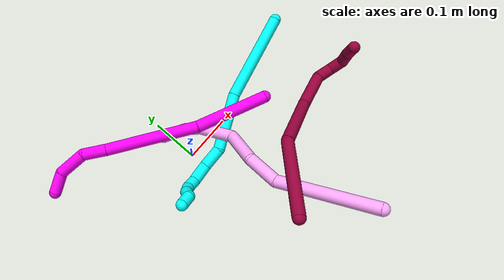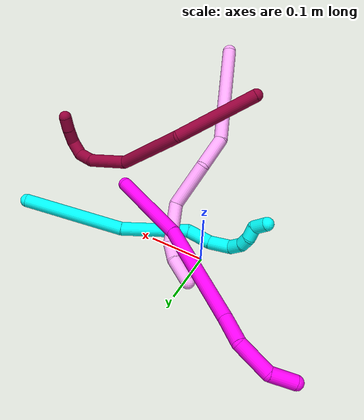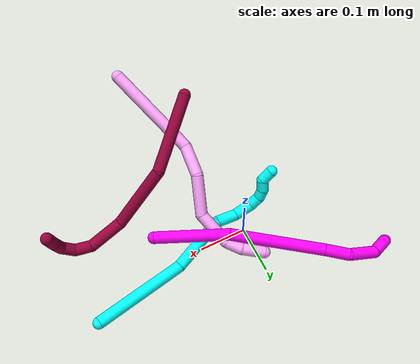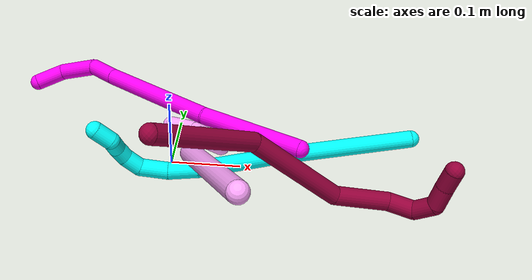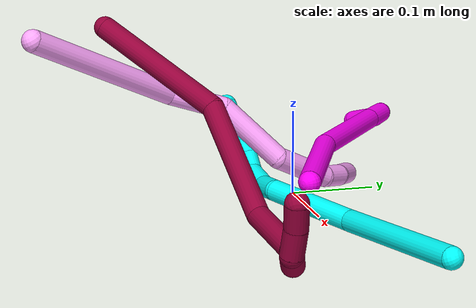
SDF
<sdf version="1.7">
 <world name="default">
  <model name="3">
   <static>0</static>
   <link name="3">
    <collision name="collision-cylinder-e_1_1_4">
     <pose>-0.061214 -0.020334 -0.071885 2.86593 -0.686456 -2.40112</pose>
     <geometry><cylinder><radius>0.0125</radius><length>0.193164</length></cylinder></geometry>
     <surface>
      <friction><ode><mu>1.16</mu><mu2>1.16</mu2><slip1>0</slip1><slip2>0</slip2></ode></friction>
      <contact><ode><kp>1e+06</kp><kd>1</kd><max_vel>0</max_vel><min_depth>0.001</min_depth></ode></contact>
     </surface>
    </collision>
    <visual name="visual-cylinder-e_1_1_4">
     <pose>-0.061214 -0.020334 -0.071885 2.86593 -0.686456 -2.40112</pose>
     <geometry><cylinder><radius>0.0125</radius><length>0.193164</length></cylinder></geometry>
     <material><ambient>0.003922 1 0.996078 1</ambient></material>
    </visual>
    <collision name="collision-cylinder-e_2_4_5">
     <pose>-0.150584 -0.064458 -0.194059 2.6997 -0.468538 -1.63139</pose>
     <geometry><cylinder><radius>0.0125</radius><length>0.124703</length></cylinder></geometry>
     <surface>
      <friction><ode><mu>1.16</mu><mu2>1.16</mu2><slip1>0</slip1><slip2>0</slip2></ode></friction>
      <contact><ode><kp>1e+06</kp><kd>1</kd><max_vel>0</max_vel><min_depth>0.001</min_depth></ode></contact>
     </surface>
    </collision>
    <visual name="visual-cylinder-e_2_4_5">
     <pose>-0.150584 -0.064458 -0.194059 2.6997 -0.468538 -1.63139</pose>
     <geometry><cylinder><radius>0.0125</radius><length>0.124703</length></cylinder></geometry>
     <material><ambient>0.003922 1 0.996078 1</ambient></material>
    </visual>
    <collision name="collision-cylinder-e_3_5_6">
     <pose>-0.195818 -0.090041 -0.258383 3.01459 -0.878865 -2.8727</pose>
     <geometry><cylinder><radius>0.0125</radius><length>0.044355</length></cylinder></geometry>
     <surface>
      <friction><ode><mu>1.16</mu><mu2>1.16</mu2><slip1>0</slip1><slip2>0</slip2></ode></friction>
      <contact><ode><kp>1e+06</kp><kd>1</kd><max_vel>0</max_vel><min_depth>0.001</min_depth></ode></contact>
     </surface>
    </collision>
    <visual name="visual-cylinder-e_3_5_6">
     <pose>-0.195818 -0.090041 -0.258383 3.01459 -0.878865 -2.8727</pose>
     <geometry><cylinder><radius>0.0125</radius><length>0.044355</length></cylinder></geometry>
     <material><ambient>0.003922 1 0.996078 1</ambient></material>
    </visual>
    <collision name="collision-cylinder-e_4_6_7">
     <pose>-0.22759 -0.099641 -0.284094 2.55213 -0.807999 -1.90667</pose>
     <geometry><cylinder><radius>0.0125</radius><length>0.040653</length></cylinder></geometry>
     <surface>
      <friction><ode><mu>1.16</mu><mu2>1.16</mu2><slip1>0</slip1><slip2>0</slip2></ode></friction>
      <contact><ode><kp>1e+06</kp><kd>1</kd><max_vel>0</max_vel><min_depth>0.001</min_depth></ode></contact>
     </surface>
    </collision>
    <visual name="visual-cylinder-e_4_6_7">
     <pose>-0.22759 -0.099641 -0.284094 2.55213 -0.807999 -1.90667</pose>
     <geometry><cylinder><radius>0.0125</radius><length>0.040653</length></cylinder></geometry>
     <material><ambient>0.003922 1 0.996078 1</ambient></material>
    </visual>
    <collision name="collision-cylinder-e_5_7_8">
     <pose>-0.250174 -0.117488 -0.298567 1.84264 -0.647975 -0.832745</pose>
     <geometry><cylinder><radius>0.0125</radius><length>0.026145</length></cylinder></geometry>
     <surface>
      <friction><ode><mu>1.16</mu><mu2>1.16</mu2><slip1>0</slip1><slip2>0</slip2></ode></friction>
      <contact><ode><kp>1e+06</kp><kd>1</kd><max_vel>0</max_vel><min_depth>0.001</min_depth></ode></contact>
     </surface>
    </collision>
    <visual name="visual-cylinder-e_5_7_8">
     <pose>-0.250174 -0.117488 -0.298567 1.84264 -0.647975 -0.832745</pose>
     <geometry><cylinder><radius>0.0125</radius><length>0.026145</length></cylinder></geometry>
     <material><ambient>0.003922 1 0.996078 1</ambient></material>
    </visual>
    <collision name="collision-cylinder-e_6_8_9">
     <pose>-0.260683 -0.137394 -0.302229 1.65811 -0.258495 -0.281814</pose>
     <geometry><cylinder><radius>0.0125</radius><length>0.020486</length></cylinder></geometry>
     <surface>
      <friction><ode><mu>1.16</mu><mu2>1.16</mu2><slip1>0</slip1><slip2>0</slip2></ode></friction>
      <contact><ode><kp>1e+06</kp><kd>1</kd><max_vel>0</max_vel><min_depth>0.001</min_depth></ode></contact>
     </surface>
    </collision>
    <visual name="visual-cylinder-e_6_8_9">
     <pose>-0.260683 -0.137394 -0.302229 1.65811 -0.258495 -0.281814</pose>
     <geometry><cylinder><radius>0.0125</radius><length>0.020486</length></cylinder></geometry>
     <material><ambient>0.003922 1 0.996078 1</ambient></material>
    </visual>
    <collision name="collision-cylinder-e_7_9_10">
     <pose>-0.261729 -0.158614 -0.304304 1.67709 0.136831 0.152151</pose>
     <geometry><cylinder><radius>0.0125</radius><length>0.023054</length></cylinder></geometry>
     <surface>
      <friction><ode><mu>1.16</mu><mu2>1.16</mu2><slip1>0</slip1><slip2>0</slip2></ode></friction>
      <contact><ode><kp>1e+06</kp><kd>1</kd><max_vel>0</max_vel><min_depth>0.001</min_depth></ode></contact>
     </surface>
    </collision>
    <visual name="visual-cylinder-e_7_9_10">
     <pose>-0.261729 -0.158614 -0.304304 1.67709 0.136831 0.152151</pose>
     <geometry><cylinder><radius>0.0125</radius><length>0.023054</length></cylinder></geometry>
     <material><ambient>0.003922 1 0.996078 1</ambient></material>
    </visual>
    <collision name="collision-cylinder-e_8_10_2">
     <pose>-0.268169 -0.180618 -0.308772 1.86755 -0.623653 -0.821698</pose>
     <geometry><cylinder><radius>0.0125</radius><length>0.027439</length></cylinder></geometry>
     <surface>
      <friction><ode><mu>1.16</mu><mu2>1.16</mu2><slip1>0</slip1><slip2>0</slip2></ode></friction>
      <contact><ode><kp>1e+06</kp><kd>1</kd><max_vel>0</max_vel><min_depth>0.001</min_depth></ode></contact>
     </surface>
    </collision>
    <visual name="visual-cylinder-e_8_10_2">
     <pose>-0.268169 -0.180618 -0.308772 1.86755 -0.623653 -0.821698</pose>
     <geometry><cylinder><radius>0.0125</radius><length>0.027439</length></cylinder></geometry>
     <material><ambient>0.003922 1 0.996078 1</ambient></material>
    </visual>
    <collision name="collision-sphere-2">
     <pose>-0.276181 -0.191268 -0.312029 0 -0 0</pose>
     <geometry><sphere><radius>0.0125</radius></sphere></geometry>
     <surface>
      <friction><ode><mu>1.16</mu><mu2>1.16</mu2><slip1>0</slip1><slip2>0</slip2></ode></friction>
      <contact><ode><kp>1e+06</kp><kd>1</kd><max_vel>0</max_vel><min_depth>0.001</min_depth></ode></contact>
     </surface>
    </collision>
    <visual name="visual-sphere-2">
     <pose>-0.276181 -0.191268 -0.312029 0 -0 0</pose>
     <geometry><sphere><radius>0.0125</radius></sphere></geometry>
     <material><ambient>0.003922 1 0.996078 1</ambient></material>
    </visual>
    <collision name="collision-sphere-10">
     <pose>-0.260156 -0.169969 -0.305516 0 -0 0</pose>
     <geometry><sphere><radius>0.0125</radius></sphere></geometry>
     <surface>
      <friction><ode><mu>1.16</mu><mu2>1.16</mu2><slip1>0</slip1><slip2>0</slip2></ode></friction>
      <contact><ode><kp>1e+06</kp><kd>1</kd><max_vel>0</max_vel><min_depth>0.001</min_depth></ode></contact>
     </surface>
    </collision>
    <visual name="visual-sphere-10">
     <pose>-0.260156 -0.169969 -0.305516 0 -0 0</pose>
     <geometry><sphere><radius>0.0125</radius></sphere></geometry>
     <material><ambient>0.003922 1 0.996078 1</ambient></material>
    </visual>
    <collision name="collision-sphere-9">
     <pose>-0.263301 -0.147259 -0.303093 0 -0 0</pose>
     <geometry><sphere><radius>0.0125</radius></sphere></geometry>
     <surface>
      <friction><ode><mu>1.16</mu><mu2>1.16</mu2><slip1>0</slip1><slip2>0</slip2></ode></friction>
      <contact><ode><kp>1e+06</kp><kd>1</kd><max_vel>0</max_vel><min_depth>0.001</min_depth></ode></contact>
     </surface>
    </collision>
    <visual name="visual-sphere-9">
     <pose>-0.263301 -0.147259 -0.303093 0 -0 0</pose>
     <geometry><sphere><radius>0.0125</radius></sphere></geometry>
     <material><ambient>0.003922 1 0.996078 1</ambient></material>
    </visual>
    <collision name="collision-sphere-4">
     <pose>-0.122427 -0.040667 -0.143771 0 -0 0</pose>
     <geometry><sphere><radius>0.0125</radius></sphere></geometry>
     <surface>
      <friction><ode><mu>1.16</mu><mu2>1.16</mu2><slip1>0</slip1><slip2>0</slip2></ode></friction>
      <contact><ode><kp>1e+06</kp><kd>1</kd><max_vel>0</max_vel><min_depth>0.001</min_depth></ode></contact>
     </surface>
    </collision>
    <visual name="visual-sphere-4">
     <pose>-0.122427 -0.040667 -0.143771 0 -0 0</pose>
     <geometry><sphere><radius>0.0125</radius></sphere></geometry>
     <material><ambient>0.003922 1 0.996078 1</ambient></material>
    </visual>
    <collision name="collision-sphere-1">
     <geometry><sphere><radius>0.0125</radius></sphere></geometry>
     <surface>
      <friction><ode><mu>1.16</mu><mu2>1.16</mu2><slip1>0</slip1><slip2>0</slip2></ode></friction>
      <contact><ode><kp>1e+06</kp><kd>1</kd><max_vel>0</max_vel><min_depth>0.001</min_depth></ode></contact>
     </surface>
    </collision>
    <visual name="visual-sphere-1">
     <geometry><sphere><radius>0.0125</radius></sphere></geometry>
     <material><ambient>0.003922 1 0.996078 1</ambient></material>
    </visual>
    <collision name="collision-sphere-8">
     <pose>-0.258064 -0.127528 -0.301365 0 -0 0</pose>
     <geometry><sphere><radius>0.0125</radius></sphere></geometry>
     <surface>
      <friction><ode><mu>1.16</mu><mu2>1.16</mu2><slip1>0</slip1><slip2>0</slip2></ode></friction>
      <contact><ode><kp>1e+06</kp><kd>1</kd><max_vel>0</max_vel><min_depth>0.001</min_depth></ode></contact>
     </surface>
    </collision>
    <visual name="visual-sphere-8">
     <pose>-0.258064 -0.127528 -0.301365 0 -0 0</pose>
     <geometry><sphere><radius>0.0125</radius></sphere></geometry>
     <material><ambient>0.003922 1 0.996078 1</ambient></material>
    </visual>
    <collision name="collision-sphere-5">
     <pose>-0.178741 -0.088249 -0.244347 0 -0 0</pose>
     <geometry><sphere><radius>0.0125</radius></sphere></geometry>
     <surface>
      <friction><ode><mu>1.16</mu><mu2>1.16</mu2><slip1>0</slip1><slip2>0</slip2></ode></friction>
      <contact><ode><kp>1e+06</kp><kd>1</kd><max_vel>0</max_vel><min_depth>0.001</min_depth></ode></contact>
     </surface>
    </collision>
    <visual name="visual-sphere-5">
     <pose>-0.178741 -0.088249 -0.244347 0 -0 0</pose>
     <geometry><sphere><radius>0.0125</radius></sphere></geometry>
     <material><ambient>0.003922 1 0.996078 1</ambient></material>
    </visual>
    <collision name="collision-sphere-6">
     <pose>-0.212895 -0.091833 -0.272419 0 -0 0</pose>
     <geometry><sphere><radius>0.0125</radius></sphere></geometry>
     <surface>
      <friction><ode><mu>1.16</mu><mu2>1.16</mu2><slip1>0</slip1><slip2>0</slip2></ode></friction>
      <contact><ode><kp>1e+06</kp><kd>1</kd><max_vel>0</max_vel><min_depth>0.001</min_depth></ode></contact>
     </surface>
    </collision>
    <visual name="visual-sphere-6">
     <pose>-0.212895 -0.091833 -0.272419 0 -0 0</pose>
     <geometry><sphere><radius>0.0125</radius></sphere></geometry>
     <material><ambient>0.003922 1 0.996078 1</ambient></material>
    </visual>
    <collision name="collision-sphere-7">
     <pose>-0.242284 -0.107449 -0.295768 0 -0 0</pose>
     <geometry><sphere><radius>0.0125</radius></sphere></geometry>
     <surface>
      <friction><ode><mu>1.16</mu><mu2>1.16</mu2><slip1>0</slip1><slip2>0</slip2></ode></friction>
      <contact><ode><kp>1e+06</kp><kd>1</kd><max_vel>0</max_vel><min_depth>0.001</min_depth></ode></contact>
     </surface>
    </collision>
    <visual name="visual-sphere-7">
     <pose>-0.242284 -0.107449 -0.295768 0 -0 0</pose>
     <geometry><sphere><radius>0.0125</radius></sphere></geometry>
     <material><ambient>0.003922 1 0.996078 1</ambient></material>
    </visual>
    <inertial>
     <pose>-0.147628 -0.069019 -0.181162 0 -0 0</pose>
     <mass>0.5</mass>
     <inertia>
      <ixx>-0.000854</ixx>
      <ixy>0</ixy>
      <ixz>0</ixz>
      <iyy>6.8e-05</iyy>
      <iyz>0</iyz>
      <izz>0.000654</izz>
     </inertia>
    </inertial>
   </link>
   <pose>0.345825 0.05957 0.0259 -1.18038 0.022028 -0.660917</pose>
  </model>
  <model name="4">
   <static>0</static>
   <link name="4">
    <collision name="collision-cylinder-e_1_1_4">
     <pose>-0.012415 0.059416 -0.075116 -2.47238 -0.128911 0.367108</pose>
     <geometry><cylinder><radius>0.0125</radius><length>0.193151</length></cylinder></geometry>
     <surface>
      <friction><ode><mu>1.16</mu><mu2>1.16</mu2><slip1>0</slip1><slip2>0</slip2></ode></friction>
      <contact><ode><kp>1e+06</kp><kd>1</kd><max_vel>0</max_vel><min_depth>0.001</min_depth></ode></contact>
     </surface>
    </collision>
    <visual name="visual-cylinder-e_1_1_4">
     <pose>-0.012415 0.059416 -0.075116 -2.47238 -0.128911 0.367108</pose>
     <geometry><cylinder><radius>0.0125</radius><length>0.193151</length></cylinder></geometry>
     <material><ambient>1 0.65098 0.996078 1</ambient></material>
    </visual>
    <collision name="collision-cylinder-e_2_4_5">
     <pose>-0.014657 0.138642 -0.173354 -2.43315 0.322474 -0.828687</pose>
     <geometry><cylinder><radius>0.0125</radius><length>0.064205</length></cylinder></geometry>
     <surface>
      <friction><ode><mu>1.16</mu><mu2>1.16</mu2><slip1>0</slip1><slip2>0</slip2></ode></friction>
      <contact><ode><kp>1e+06</kp><kd>1</kd><max_vel>0</max_vel><min_depth>0.001</min_depth></ode></contact>
     </surface>
    </collision>
    <visual name="visual-cylinder-e_2_4_5">
     <pose>-0.014657 0.138642 -0.173354 -2.43315 0.322474 -0.828687</pose>
     <geometry><cylinder><radius>0.0125</radius><length>0.064205</length></cylinder></geometry>
     <material><ambient>1 0.65098 0.996078 1</ambient></material>
    </visual>
    <collision name="collision-cylinder-e_3_5_6">
     <pose>0.009983 0.165607 -0.235406 -2.95984 0.350383 -2.19073</pose>
     <geometry><cylinder><radius>0.0125</radius><length>0.084287</length></cylinder></geometry>
     <surface>
      <friction><ode><mu>1.16</mu><mu2>1.16</mu2><slip1>0</slip1><slip2>0</slip2></ode></friction>
      <contact><ode><kp>1e+06</kp><kd>1</kd><max_vel>0</max_vel><min_depth>0.001</min_depth></ode></contact>
     </surface>
    </collision>
    <visual name="visual-cylinder-e_3_5_6">
     <pose>0.009983 0.165607 -0.235406 -2.95984 0.350383 -2.19073</pose>
     <geometry><cylinder><radius>0.0125</radius><length>0.084287</length></cylinder></geometry>
     <material><ambient>1 0.65098 0.996078 1</ambient></material>
    </visual>
    <collision name="collision-cylinder-e_4_6_7">
     <pose>0.020425 0.195614 -0.304551 -2.49404 -0.10584 0.313101</pose>
     <geometry><cylinder><radius>0.0125</radius><length>0.076191</length></cylinder></geometry>
     <surface>
      <friction><ode><mu>1.16</mu><mu2>1.16</mu2><slip1>0</slip1><slip2>0</slip2></ode></friction>
      <contact><ode><kp>1e+06</kp><kd>1</kd><max_vel>0</max_vel><min_depth>0.001</min_depth></ode></contact>
     </surface>
    </collision>
    <visual name="visual-cylinder-e_4_6_7">
     <pose>0.020425 0.195614 -0.304551 -2.49404 -0.10584 0.313101</pose>
     <geometry><cylinder><radius>0.0125</radius><length>0.076191</length></cylinder></geometry>
     <material><ambient>1 0.65098 0.996078 1</ambient></material>
    </visual>
    <collision name="collision-cylinder-e_5_7_8">
     <pose>0.00958 0.231031 -0.343771 -2.19275 -0.41549 0.778977</pose>
     <geometry><cylinder><radius>0.0125</radius><length>0.033794</length></cylinder></geometry>
     <surface>
      <friction><ode><mu>1.16</mu><mu2>1.16</mu2><slip1>0</slip1><slip2>0</slip2></ode></friction>
      <contact><ode><kp>1e+06</kp><kd>1</kd><max_vel>0</max_vel><min_depth>0.001</min_depth></ode></contact>
     </surface>
    </collision>
    <visual name="visual-cylinder-e_5_7_8">
     <pose>0.00958 0.231031 -0.343771 -2.19275 -0.41549 0.778977</pose>
     <geometry><cylinder><radius>0.0125</radius><length>0.033794</length></cylinder></geometry>
     <material><ambient>1 0.65098 0.996078 1</ambient></material>
    </visual>
    <collision name="collision-cylinder-e_6_8_2">
     <pose>-0.013275 0.258207 -0.363471 -2.20251 -0.724793 1.28346</pose>
     <geometry><cylinder><radius>0.0125</radius><length>0.048372</length></cylinder></geometry>
     <surface>
      <friction><ode><mu>1.16</mu><mu2>1.16</mu2><slip1>0</slip1><slip2>0</slip2></ode></friction>
      <contact><ode><kp>1e+06</kp><kd>1</kd><max_vel>0</max_vel><min_depth>0.001</min_depth></ode></contact>
     </surface>
    </collision>
    <visual name="visual-cylinder-e_6_8_2">
     <pose>-0.013275 0.258207 -0.363471 -2.20251 -0.724793 1.28346</pose>
     <geometry><cylinder><radius>0.0125</radius><length>0.048372</length></cylinder></geometry>
     <material><ambient>1 0.65098 0.996078 1</ambient></material>
    </visual>
    <collision name="collision-sphere-2">
     <pose>-0.02931 0.27282 -0.374163 0 -0 0</pose>
     <geometry><sphere><radius>0.0125</radius></sphere></geometry>
     <surface>
      <friction><ode><mu>1.16</mu><mu2>1.16</mu2><slip1>0</slip1><slip2>0</slip2></ode></friction>
      <contact><ode><kp>1e+06</kp><kd>1</kd><max_vel>0</max_vel><min_depth>0.001</min_depth></ode></contact>
     </surface>
    </collision>
    <visual name="visual-sphere-2">
     <pose>-0.02931 0.27282 -0.374163 0 -0 0</pose>
     <geometry><sphere><radius>0.0125</radius></sphere></geometry>
     <material><ambient>1 0.65098 0.996078 1</ambient></material>
    </visual>
    <collision name="collision-sphere-4">
     <pose>-0.02483 0.118831 -0.150232 0 -0 0</pose>
     <geometry><sphere><radius>0.0125</radius></sphere></geometry>
     <surface>
      <friction><ode><mu>1.16</mu><mu2>1.16</mu2><slip1>0</slip1><slip2>0</slip2></ode></friction>
      <contact><ode><kp>1e+06</kp><kd>1</kd><max_vel>0</max_vel><min_depth>0.001</min_depth></ode></contact>
     </surface>
    </collision>
    <visual name="visual-sphere-4">
     <pose>-0.02483 0.118831 -0.150232 0 -0 0</pose>
     <geometry><sphere><radius>0.0125</radius></sphere></geometry>
     <material><ambient>1 0.65098 0.996078 1</ambient></material>
    </visual>
    <collision name="collision-sphere-1">
     <geometry><sphere><radius>0.0125</radius></sphere></geometry>
     <surface>
      <friction><ode><mu>1.16</mu><mu2>1.16</mu2><slip1>0</slip1><slip2>0</slip2></ode></friction>
      <contact><ode><kp>1e+06</kp><kd>1</kd><max_vel>0</max_vel><min_depth>0.001</min_depth></ode></contact>
     </surface>
    </collision>
    <visual name="visual-sphere-1">
     <geometry><sphere><radius>0.0125</radius></sphere></geometry>
     <material><ambient>1 0.65098 0.996078 1</ambient></material>
    </visual>
    <collision name="collision-sphere-8">
     <pose>0.00276 0.243595 -0.352778 0 -0 0</pose>
     <geometry><sphere><radius>0.0125</radius></sphere></geometry>
     <surface>
      <friction><ode><mu>1.16</mu><mu2>1.16</mu2><slip1>0</slip1><slip2>0</slip2></ode></friction>
      <contact><ode><kp>1e+06</kp><kd>1</kd><max_vel>0</max_vel><min_depth>0.001</min_depth></ode></contact>
     </surface>
    </collision>
    <visual name="visual-sphere-8">
     <pose>0.00276 0.243595 -0.352778 0 -0 0</pose>
     <geometry><sphere><radius>0.0125</radius></sphere></geometry>
     <material><ambient>1 0.65098 0.996078 1</ambient></material>
    </visual>
    <collision name="collision-sphere-5">
     <pose>-0.004483 0.158453 -0.196475 0 -0 0</pose>
     <geometry><sphere><radius>0.0125</radius></sphere></geometry>
     <surface>
      <friction><ode><mu>1.16</mu><mu2>1.16</mu2><slip1>0</slip1><slip2>0</slip2></ode></friction>
      <contact><ode><kp>1e+06</kp><kd>1</kd><max_vel>0</max_vel><min_depth>0.001</min_depth></ode></contact>
     </surface>
    </collision>
    <visual name="visual-sphere-5">
     <pose>-0.004483 0.158453 -0.196475 0 -0 0</pose>
     <geometry><sphere><radius>0.0125</radius></sphere></geometry>
     <material><ambient>1 0.65098 0.996078 1</ambient></material>
    </visual>
    <collision name="collision-sphere-6">
     <pose>0.024449 0.172762 -0.274337 0 -0 0</pose>
     <geometry><sphere><radius>0.0125</radius></sphere></geometry>
     <surface>
      <friction><ode><mu>1.16</mu><mu2>1.16</mu2><slip1>0</slip1><slip2>0</slip2></ode></friction>
      <contact><ode><kp>1e+06</kp><kd>1</kd><max_vel>0</max_vel><min_depth>0.001</min_depth></ode></contact>
     </surface>
    </collision>
    <visual name="visual-sphere-6">
     <pose>0.024449 0.172762 -0.274337 0 -0 0</pose>
     <geometry><sphere><radius>0.0125</radius></sphere></geometry>
     <material><ambient>1 0.65098 0.996078 1</ambient></material>
    </visual>
    <collision name="collision-sphere-7">
     <pose>0.0164 0.218466 -0.334764 0 -0 0</pose>
     <geometry><sphere><radius>0.0125</radius></sphere></geometry>
     <surface>
      <friction><ode><mu>1.16</mu><mu2>1.16</mu2><slip1>0</slip1><slip2>0</slip2></ode></friction>
      <contact><ode><kp>1e+06</kp><kd>1</kd><max_vel>0</max_vel><min_depth>0.001</min_depth></ode></contact>
     </surface>
    </collision>
    <visual name="visual-sphere-7">
     <pose>0.0164 0.218466 -0.334764 0 -0 0</pose>
     <geometry><sphere><radius>0.0125</radius></sphere></geometry>
     <material><ambient>1 0.65098 0.996078 1</ambient></material>
    </visual>
    <inertial>
     <pose>-0.00252 0.139076 -0.195768 0 -0 0</pose>
     <mass>0.5</mass>
     <inertia>
      <ixx>0.000772</ixx>
      <ixy>0</ixy>
      <ixz>0</ixz>
      <iyy>-0.000227</iyy>
      <iyz>0</iyz>
      <izz>-0.000396</izz>
     </inertia>
    </inertial>
   </link>
   <pose>0.121798 -0.322454 0.224168 0.48086 -0.152523 0.331799</pose>
  </model>
  <model name="8">
   <static>0</static>
   <link name="8">
    <collision name="collision-cylinder-e_1_1_4">
     <pose>0.006644 0.056198 -0.057125 -2.36437 0.082719 -0.201464</pose>
     <geometry><cylinder><radius>0.0125</radius><length>0.160818</length></cylinder></geometry>
     <surface>
      <friction><ode><mu>1.16</mu><mu2>1.16</mu2><slip1>0</slip1><slip2>0</slip2></ode></friction>
      <contact><ode><kp>1e+06</kp><kd>1</kd><max_vel>0</max_vel><min_depth>0.001</min_depth></ode></contact>
     </surface>
    </collision>
    <visual name="visual-cylinder-e_1_1_4">
     <pose>0.006644 0.056198 -0.057125 -2.36437 0.082719 -0.201464</pose>
     <geometry><cylinder><radius>0.0125</radius><length>0.160818</length></cylinder></geometry>
     <material><ambient>0.584314 0 0.227451 1</ambient></material>
    </visual>
    <collision name="collision-cylinder-e_2_4_5">
     <pose>0.011188 0.132443 -0.18205 -2.85412 -0.029688 0.20442</pose>
     <geometry><cylinder><radius>0.0125</radius><length>0.141467</length></cylinder></geometry>
     <surface>
      <friction><ode><mu>1.16</mu><mu2>1.16</mu2><slip1>0</slip1><slip2>0</slip2></ode></friction>
      <contact><ode><kp>1e+06</kp><kd>1</kd><max_vel>0</max_vel><min_depth>0.001</min_depth></ode></contact>
     </surface>
    </collision>
    <visual name="visual-cylinder-e_2_4_5">
     <pose>0.011188 0.132443 -0.18205 -2.85412 -0.029688 0.20442</pose>
     <geometry><cylinder><radius>0.0125</radius><length>0.141467</length></cylinder></geometry>
     <material><ambient>0.584314 0 0.227451 1</ambient></material>
    </visual>
    <collision name="collision-cylinder-e_3_5_6">
     <pose>0.02568 0.163552 -0.280934 -2.79965 0.465953 -1.88353</pose>
     <geometry><cylinder><radius>0.0125</radius><length>0.073859</length></cylinder></geometry>
     <surface>
      <friction><ode><mu>1.16</mu><mu2>1.16</mu2><slip1>0</slip1><slip2>0</slip2></ode></friction>
      <contact><ode><kp>1e+06</kp><kd>1</kd><max_vel>0</max_vel><min_depth>0.001</min_depth></ode></contact>
     </surface>
    </collision>
    <visual name="visual-cylinder-e_3_5_6">
     <pose>0.02568 0.163552 -0.280934 -2.79965 0.465953 -1.88353</pose>
     <geometry><cylinder><radius>0.0125</radius><length>0.073859</length></cylinder></geometry>
     <material><ambient>0.584314 0 0.227451 1</ambient></material>
    </visual>
    <collision name="collision-cylinder-e_4_6_7">
     <pose>0.051065 0.172091 -0.326844 2.97296 0.529074 2.53674</pose>
     <geometry><cylinder><radius>0.0125</radius><length>0.034845</length></cylinder></geometry>
     <surface>
      <friction><ode><mu>1.16</mu><mu2>1.16</mu2><slip1>0</slip1><slip2>0</slip2></ode></friction>
      <contact><ode><kp>1e+06</kp><kd>1</kd><max_vel>0</max_vel><min_depth>0.001</min_depth></ode></contact>
     </surface>
    </collision>
    <visual name="visual-cylinder-e_4_6_7">
     <pose>0.051065 0.172091 -0.326844 2.97296 0.529074 2.53674</pose>
     <geometry><cylinder><radius>0.0125</radius><length>0.034845</length></cylinder></geometry>
     <material><ambient>0.584314 0 0.227451 1</ambient></material>
    </visual>
    <collision name="collision-cylinder-e_5_7_8">
     <pose>0.073963 0.165541 -0.345534 2.33553 1.19409 2.02125</pose>
     <geometry><cylinder><radius>0.0125</radius><length>0.030335</length></cylinder></geometry>
     <surface>
      <friction><ode><mu>1.16</mu><mu2>1.16</mu2><slip1>0</slip1><slip2>0</slip2></ode></friction>
      <contact><ode><kp>1e+06</kp><kd>1</kd><max_vel>0</max_vel><min_depth>0.001</min_depth></ode></contact>
     </surface>
    </collision>
    <visual name="visual-cylinder-e_5_7_8">
     <pose>0.073963 0.165541 -0.345534 2.33553 1.19409 2.02125</pose>
     <geometry><cylinder><radius>0.0125</radius><length>0.030335</length></cylinder></geometry>
     <material><ambient>0.584314 0 0.227451 1</ambient></material>
    </visual>
    <collision name="collision-cylinder-e_6_8_9">
     <pose>0.102053 0.161216 -0.342873 0.04568 1.13397 0.029088</pose>
     <geometry><cylinder><radius>0.0125</radius><length>0.030872</length></cylinder></geometry>
     <surface>
      <friction><ode><mu>1.16</mu><mu2>1.16</mu2><slip1>0</slip1><slip2>0</slip2></ode></friction>
      <contact><ode><kp>1e+06</kp><kd>1</kd><max_vel>0</max_vel><min_depth>0.001</min_depth></ode></contact>
     </surface>
    </collision>
    <visual name="visual-cylinder-e_6_8_9">
     <pose>0.102053 0.161216 -0.342873 0.04568 1.13397 0.029088</pose>
     <geometry><cylinder><radius>0.0125</radius><length>0.030872</length></cylinder></geometry>
     <material><ambient>0.584314 0 0.227451 1</ambient></material>
    </visual>
    <collision name="collision-cylinder-e_7_9_2">
     <pose>0.128558 0.159158 -0.330566 0.29543 1.12087 0.18622</pose>
     <geometry><cylinder><radius>0.0125</radius><length>0.027803</length></cylinder></geometry>
     <surface>
      <friction><ode><mu>1.16</mu><mu2>1.16</mu2><slip1>0</slip1><slip2>0</slip2></ode></friction>
      <contact><ode><kp>1e+06</kp><kd>1</kd><max_vel>0</max_vel><min_depth>0.001</min_depth></ode></contact>
     </surface>
    </collision>
    <visual name="visual-cylinder-e_7_9_2">
     <pose>0.128558 0.159158 -0.330566 0.29543 1.12087 0.18622</pose>
     <geometry><cylinder><radius>0.0125</radius><length>0.027803</length></cylinder></geometry>
     <material><ambient>0.584314 0 0.227451 1</ambient></material>
    </visual>
    <collision name="collision-sphere-2">
     <pose>0.141076 0.157398 -0.324782 0 -0 0</pose>
     <geometry><sphere><radius>0.0125</radius></sphere></geometry>
     <surface>
      <friction><ode><mu>1.16</mu><mu2>1.16</mu2><slip1>0</slip1><slip2>0</slip2></ode></friction>
      <contact><ode><kp>1e+06</kp><kd>1</kd><max_vel>0</max_vel><min_depth>0.001</min_depth></ode></contact>
     </surface>
    </collision>
    <visual name="visual-sphere-2">
     <pose>0.141076 0.157398 -0.324782 0 -0 0</pose>
     <geometry><sphere><radius>0.0125</radius></sphere></geometry>
     <material><ambient>0.584314 0 0.227451 1</ambient></material>
    </visual>
    <collision name="collision-sphere-9">
     <pose>0.11604 0.160918 -0.33635 0 -0 0</pose>
     <geometry><sphere><radius>0.0125</radius></sphere></geometry>
     <surface>
      <friction><ode><mu>1.16</mu><mu2>1.16</mu2><slip1>0</slip1><slip2>0</slip2></ode></friction>
      <contact><ode><kp>1e+06</kp><kd>1</kd><max_vel>0</max_vel><min_depth>0.001</min_depth></ode></contact>
     </surface>
    </collision>
    <visual name="visual-sphere-9">
     <pose>0.11604 0.160918 -0.33635 0 -0 0</pose>
     <geometry><sphere><radius>0.0125</radius></sphere></geometry>
     <material><ambient>0.584314 0 0.227451 1</ambient></material>
    </visual>
    <collision name="collision-sphere-4">
     <pose>0.013288 0.112397 -0.114249 0 -0 0</pose>
     <geometry><sphere><radius>0.0125</radius></sphere></geometry>
     <surface>
      <friction><ode><mu>1.16</mu><mu2>1.16</mu2><slip1>0</slip1><slip2>0</slip2></ode></friction>
      <contact><ode><kp>1e+06</kp><kd>1</kd><max_vel>0</max_vel><min_depth>0.001</min_depth></ode></contact>
     </surface>
    </collision>
    <visual name="visual-sphere-4">
     <pose>0.013288 0.112397 -0.114249 0 -0 0</pose>
     <geometry><sphere><radius>0.0125</radius></sphere></geometry>
     <material><ambient>0.584314 0 0.227451 1</ambient></material>
    </visual>
    <collision name="collision-sphere-1">
     <geometry><sphere><radius>0.0125</radius></sphere></geometry>
     <surface>
      <friction><ode><mu>1.16</mu><mu2>1.16</mu2><slip1>0</slip1><slip2>0</slip2></ode></friction>
      <contact><ode><kp>1e+06</kp><kd>1</kd><max_vel>0</max_vel><min_depth>0.001</min_depth></ode></contact>
     </surface>
    </collision>
    <visual name="visual-sphere-1">
     <geometry><sphere><radius>0.0125</radius></sphere></geometry>
     <material><ambient>0.584314 0 0.227451 1</ambient></material>
    </visual>
    <collision name="collision-sphere-8">
     <pose>0.088067 0.161515 -0.349397 0 -0 0</pose>
     <geometry><sphere><radius>0.0125</radius></sphere></geometry>
     <surface>
      <friction><ode><mu>1.16</mu><mu2>1.16</mu2><slip1>0</slip1><slip2>0</slip2></ode></friction>
      <contact><ode><kp>1e+06</kp><kd>1</kd><max_vel>0</max_vel><min_depth>0.001</min_depth></ode></contact>
     </surface>
    </collision>
    <visual name="visual-sphere-8">
     <pose>0.088067 0.161515 -0.349397 0 -0 0</pose>
     <geometry><sphere><radius>0.0125</radius></sphere></geometry>
     <material><ambient>0.584314 0 0.227451 1</ambient></material>
    </visual>
    <collision name="collision-sphere-5">
     <pose>0.009088 0.152489 -0.249851 0 -0 0</pose>
     <geometry><sphere><radius>0.0125</radius></sphere></geometry>
     <surface>
      <friction><ode><mu>1.16</mu><mu2>1.16</mu2><slip1>0</slip1><slip2>0</slip2></ode></friction>
      <contact><ode><kp>1e+06</kp><kd>1</kd><max_vel>0</max_vel><min_depth>0.001</min_depth></ode></contact>
     </surface>
    </collision>
    <visual name="visual-sphere-5">
     <pose>0.009088 0.152489 -0.249851 0 -0 0</pose>
     <geometry><sphere><radius>0.0125</radius></sphere></geometry>
     <material><ambient>0.584314 0 0.227451 1</ambient></material>
    </visual>
    <collision name="collision-sphere-6">
     <pose>0.042271 0.174615 -0.312017 0 -0 0</pose>
     <geometry><sphere><radius>0.0125</radius></sphere></geometry>
     <surface>
      <friction><ode><mu>1.16</mu><mu2>1.16</mu2><slip1>0</slip1><slip2>0</slip2></ode></friction>
      <contact><ode><kp>1e+06</kp><kd>1</kd><max_vel>0</max_vel><min_depth>0.001</min_depth></ode></contact>
     </surface>
    </collision>
    <visual name="visual-sphere-6">
     <pose>0.042271 0.174615 -0.312017 0 -0 0</pose>
     <geometry><sphere><radius>0.0125</radius></sphere></geometry>
     <material><ambient>0.584314 0 0.227451 1</ambient></material>
    </visual>
    <collision name="collision-sphere-7">
     <pose>0.059859 0.169567 -0.341671 0 -0 0</pose>
     <geometry><sphere><radius>0.0125</radius></sphere></geometry>
     <surface>
      <friction><ode><mu>1.16</mu><mu2>1.16</mu2><slip1>0</slip1><slip2>0</slip2></ode></friction>
      <contact><ode><kp>1e+06</kp><kd>1</kd><max_vel>0</max_vel><min_depth>0.001</min_depth></ode></contact>
     </surface>
    </collision>
    <visual name="visual-sphere-7">
     <pose>0.059859 0.169567 -0.341671 0 -0 0</pose>
     <geometry><sphere><radius>0.0125</radius></sphere></geometry>
     <material><ambient>0.584314 0 0.227451 1</ambient></material>
    </visual>
    <inertial>
     <pose>0.030592 0.120548 -0.194674 0 -0 0</pose>
     <mass>0.5</mass>
     <inertia>
      <ixx>0.000532</ixx>
      <ixy>0</ixy>
      <ixz>0</ixz>
      <iyy>-0.000475</iyy>
      <iyz>0</iyz>
      <izz>-0.000399</izz>
     </inertia>
    </inertial>
   </link>
   <pose>0.019785 -0.226783 0.215176 -0.157606 -0.880114 0.029192</pose>
  </model>
  <model name="10">
   <static>0</static>
   <link name="10">
    <collision name="collision-cylinder-e_1_1_4">
     <pose>-0.033448 -0.017131 0.066265 0.252989 -0.454563 -0.058808</pose>
     <geometry><cylinder><radius>0.0125</radius><length>0.152359</length></cylinder></geometry>
     <surface>
      <friction><ode><mu>1.16</mu><mu2>1.16</mu2><slip1>0</slip1><slip2>0</slip2></ode></friction>
      <contact><ode><kp>1e+06</kp><kd>1</kd><max_vel>0</max_vel><min_depth>0.001</min_depth></ode></contact>
     </surface>
    </collision>
    <visual name="visual-cylinder-e_1_1_4">
     <pose>-0.033448 -0.017131 0.066265 0.252989 -0.454563 -0.058808</pose>
     <geometry><cylinder><radius>0.0125</radius><length>0.152359</length></cylinder></geometry>
     <material><ambient>1 0 0.964706 1</ambient></material>
    </visual>
    <collision name="collision-cylinder-e_2_4_5">
     <pose>-0.097589 -0.041723 0.223222 0.082071 -0.325311 -0.013476</pose>
     <geometry><cylinder><radius>0.0125</radius><length>0.192072</length></cylinder></geometry>
     <surface>
      <friction><ode><mu>1.16</mu><mu2>1.16</mu2><slip1>0</slip1><slip2>0</slip2></ode></friction>
      <contact><ode><kp>1e+06</kp><kd>1</kd><max_vel>0</max_vel><min_depth>0.001</min_depth></ode></contact>
     </surface>
    </collision>
    <visual name="visual-cylinder-e_2_4_5">
     <pose>-0.097589 -0.041723 0.223222 0.082071 -0.325311 -0.013476</pose>
     <geometry><cylinder><radius>0.0125</radius><length>0.192072</length></cylinder></geometry>
     <material><ambient>1 0 0.964706 1</ambient></material>
    </visual>
    <collision name="collision-cylinder-e_3_5_6">
     <pose>-0.13497 -0.051012 0.337445 0.077582 -0.276109 -0.010784</pose>
     <geometry><cylinder><radius>0.0125</radius><length>0.049059</length></cylinder></geometry>
     <surface>
      <friction><ode><mu>1.16</mu><mu2>1.16</mu2><slip1>0</slip1><slip2>0</slip2></ode></friction>
      <contact><ode><kp>1e+06</kp><kd>1</kd><max_vel>0</max_vel><min_depth>0.001</min_depth></ode></contact>
     </surface>
    </collision>
    <visual name="visual-cylinder-e_3_5_6">
     <pose>-0.13497 -0.051012 0.337445 0.077582 -0.276109 -0.010784</pose>
     <geometry><cylinder><radius>0.0125</radius><length>0.049059</length></cylinder></geometry>
     <material><ambient>1 0 0.964706 1</ambient></material>
    </visual>
    <collision name="collision-cylinder-e_4_6_7">
     <pose>-0.163746 -0.052389 0.382806 -0.0207 -0.79115 0.008644</pose>
     <geometry><cylinder><radius>0.0125</radius><length>0.062121</length></cylinder></geometry>
     <surface>
      <friction><ode><mu>1.16</mu><mu2>1.16</mu2><slip1>0</slip1><slip2>0</slip2></ode></friction>
      <contact><ode><kp>1e+06</kp><kd>1</kd><max_vel>0</max_vel><min_depth>0.001</min_depth></ode></contact>
     </surface>
    </collision>
    <visual name="visual-cylinder-e_4_6_7">
     <pose>-0.163746 -0.052389 0.382806 -0.0207 -0.79115 0.008644</pose>
     <geometry><cylinder><radius>0.0125</radius><length>0.062121</length></cylinder></geometry>
     <material><ambient>1 0 0.964706 1</ambient></material>
    </visual>
    <collision name="collision-cylinder-e_5_7_2">
     <pose>-0.207075 -0.055466 0.410024 0.580042 -1.27642 -0.435714</pose>
     <geometry><cylinder><radius>0.0125</radius><length>0.044389</length></cylinder></geometry>
     <surface>
      <friction><ode><mu>1.16</mu><mu2>1.16</mu2><slip1>0</slip1><slip2>0</slip2></ode></friction>
      <contact><ode><kp>1e+06</kp><kd>1</kd><max_vel>0</max_vel><min_depth>0.001</min_depth></ode></contact>
     </surface>
    </collision>
    <visual name="visual-cylinder-e_5_7_2">
     <pose>-0.207075 -0.055466 0.410024 0.580042 -1.27642 -0.435714</pose>
     <geometry><cylinder><radius>0.0125</radius><length>0.044389</length></cylinder></geometry>
     <material><ambient>1 0 0.964706 1</ambient></material>
    </visual>
    <collision name="collision-sphere-2">
     <pose>-0.228315 -0.058996 0.41541 0 -0 0</pose>
     <geometry><sphere><radius>0.0125</radius></sphere></geometry>
     <surface>
      <friction><ode><mu>1.16</mu><mu2>1.16</mu2><slip1>0</slip1><slip2>0</slip2></ode></friction>
      <contact><ode><kp>1e+06</kp><kd>1</kd><max_vel>0</max_vel><min_depth>0.001</min_depth></ode></contact>
     </surface>
    </collision>
    <visual name="visual-sphere-2">
     <pose>-0.228315 -0.058996 0.41541 0 -0 0</pose>
     <geometry><sphere><radius>0.0125</radius></sphere></geometry>
     <material><ambient>1 0 0.964706 1</ambient></material>
    </visual>
    <collision name="collision-sphere-7">
     <pose>-0.185835 -0.051937 0.404638 0 -0 0</pose>
     <geometry><sphere><radius>0.0125</radius></sphere></geometry>
     <surface>
      <friction><ode><mu>1.16</mu><mu2>1.16</mu2><slip1>0</slip1><slip2>0</slip2></ode></friction>
      <contact><ode><kp>1e+06</kp><kd>1</kd><max_vel>0</max_vel><min_depth>0.001</min_depth></ode></contact>
     </surface>
    </collision>
    <visual name="visual-sphere-7">
     <pose>-0.185835 -0.051937 0.404638 0 -0 0</pose>
     <geometry><sphere><radius>0.0125</radius></sphere></geometry>
     <material><ambient>1 0 0.964706 1</ambient></material>
    </visual>
    <collision name="collision-sphere-6">
     <pose>-0.141657 -0.052841 0.360974 0 -0 0</pose>
     <geometry><sphere><radius>0.0125</radius></sphere></geometry>
     <surface>
      <friction><ode><mu>1.16</mu><mu2>1.16</mu2><slip1>0</slip1><slip2>0</slip2></ode></friction>
      <contact><ode><kp>1e+06</kp><kd>1</kd><max_vel>0</max_vel><min_depth>0.001</min_depth></ode></contact>
     </surface>
    </collision>
    <visual name="visual-sphere-6">
     <pose>-0.141657 -0.052841 0.360974 0 -0 0</pose>
     <geometry><sphere><radius>0.0125</radius></sphere></geometry>
     <material><ambient>1 0 0.964706 1</ambient></material>
    </visual>
    <collision name="collision-sphere-5">
     <pose>-0.128283 -0.049183 0.313915 0 -0 0</pose>
     <geometry><sphere><radius>0.0125</radius></sphere></geometry>
     <surface>
      <friction><ode><mu>1.16</mu><mu2>1.16</mu2><slip1>0</slip1><slip2>0</slip2></ode></friction>
      <contact><ode><kp>1e+06</kp><kd>1</kd><max_vel>0</max_vel><min_depth>0.001</min_depth></ode></contact>
     </surface>
    </collision>
    <visual name="visual-sphere-5">
     <pose>-0.128283 -0.049183 0.313915 0 -0 0</pose>
     <geometry><sphere><radius>0.0125</radius></sphere></geometry>
     <material><ambient>1 0 0.964706 1</ambient></material>
    </visual>
    <collision name="collision-sphere-1">
     <geometry><sphere><radius>0.0125</radius></sphere></geometry>
     <surface>
      <friction><ode><mu>1.16</mu><mu2>1.16</mu2><slip1>0</slip1><slip2>0</slip2></ode></friction>
      <contact><ode><kp>1e+06</kp><kd>1</kd><max_vel>0</max_vel><min_depth>0.001</min_depth></ode></contact>
     </surface>
    </collision>
    <visual name="visual-sphere-1">
     <geometry><sphere><radius>0.0125</radius></sphere></geometry>
     <material><ambient>1 0 0.964706 1</ambient></material>
    </visual>
    <collision name="collision-sphere-4">
     <pose>-0.066896 -0.034263 0.13253 0 -0 0</pose>
     <geometry><sphere><radius>0.0125</radius></sphere></geometry>
     <surface>
      <friction><ode><mu>1.16</mu><mu2>1.16</mu2><slip1>0</slip1><slip2>0</slip2></ode></friction>
      <contact><ode><kp>1e+06</kp><kd>1</kd><max_vel>0</max_vel><min_depth>0.001</min_depth></ode></contact>
     </surface>
    </collision>
    <visual name="visual-sphere-4">
     <pose>-0.066896 -0.034263 0.13253 0 -0 0</pose>
     <geometry><sphere><radius>0.0125</radius></sphere></geometry>
     <material><ambient>1 0 0.964706 1</ambient></material>
    </visual>
    <inertial>
     <pose>-0.099652 -0.037686 0.223013 0 -0 0</pose>
     <mass>0.5</mass>
     <inertia>
      <ixx>0.000823</ixx>
      <ixy>0</ixy>
      <ixz>0</ixz>
      <iyy>0.000902</iyy>
      <iyz>0</iyz>
      <izz>0.000499</izz>
     </inertia>
    </inertial>
   </link>
   <pose>0.184143 -0.038412 0.067579 -1.56091 -0.473098 0.625953</pose>
  </model>
 </world>
</sdf>
